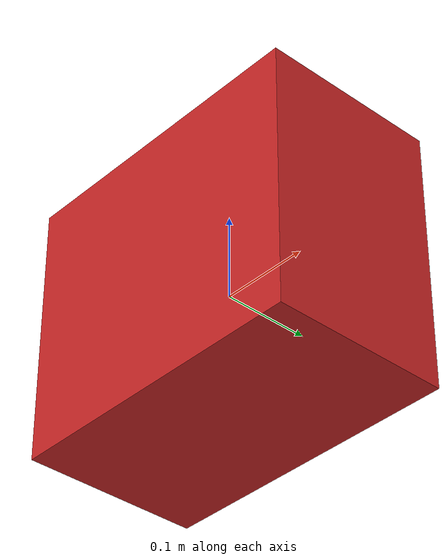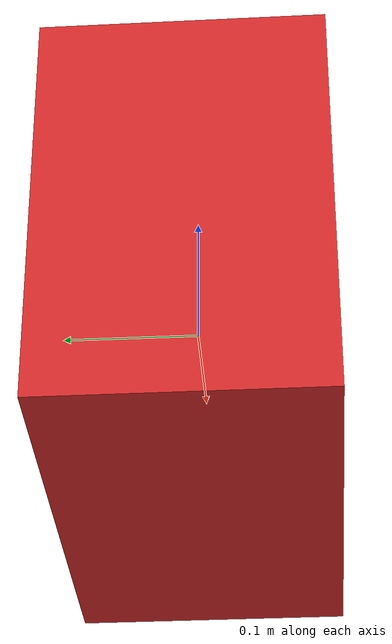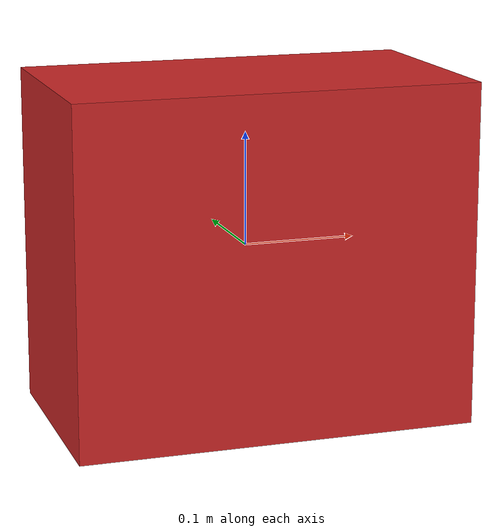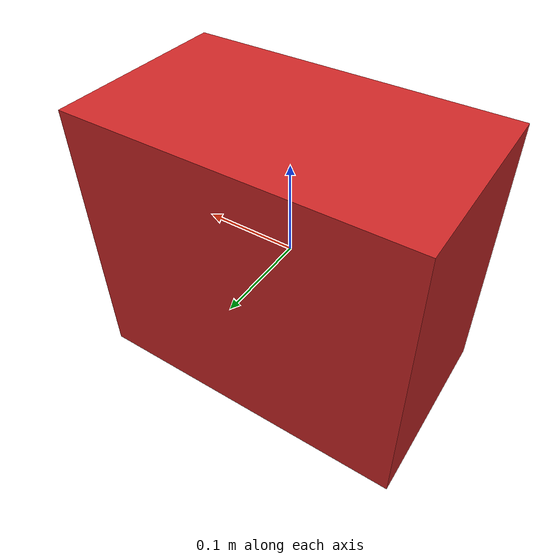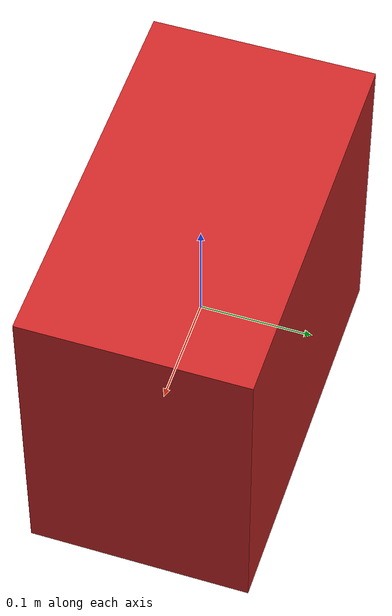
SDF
<?xml version="1.0" ?>
<sdf version="1.5">
  <model name="box_table">
  	<static>false</static>
  	<link name="link">
      <inertial>
        <pose>0 0 0 0 0 0</pose>
        <!-- volume about 0.0085 m^3, density 2000 kg/m^3 -->
        <mass>5</mass>
        <!-- approximate as uniform box 0.37 x 0.17 x 0.20 m -->
        <inertia>
          <ixx>0.07</ixx>
          <ixy>0.0000</ixy>
          <iyy>0.07</iyy>
          <ixz>0.0000</ixz>
          <iyz>0.0000</iyz>
          <izz>0.07</izz>
        </inertia>
      </inertial>
      <collision name="collision">
        <geometry>
          <box>
            <size>0.35 0.2 0.3</size>
          </box>
        </geometry>
        <surface>
          <contact>
            <ode>
              <max_vel>0.1</max_vel>
              <min_depth>0.001</min_depth>
            </ode>
          </contact>
          <friction>
          	<ode>
          	  <mu>100</mu>
          	  <mu2>50</mu2>
          	</ode>
          </friction>
        </surface>
      </collision>
      <visual name="visual">
      	<geometry>
          <box>
            <size>0.35 0.2 0.3</size>
          </box>
        </geometry>
        <material>
          <script>
          	<uri>file://media/materials/scripts/gazebo.material</uri>
          	<name>Gazebo/Red</name>
          </script>
        </material>
      </visual>
    </link>
  </model>
</sdf>
